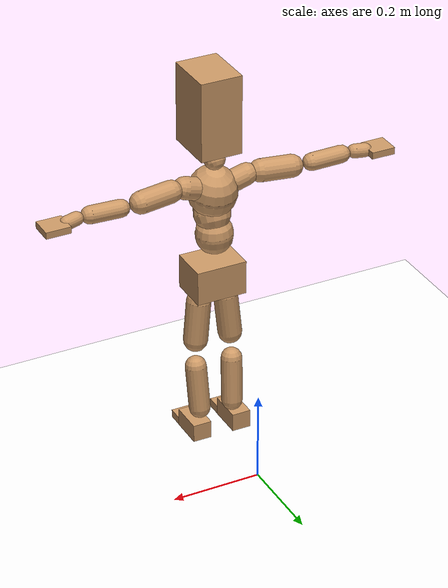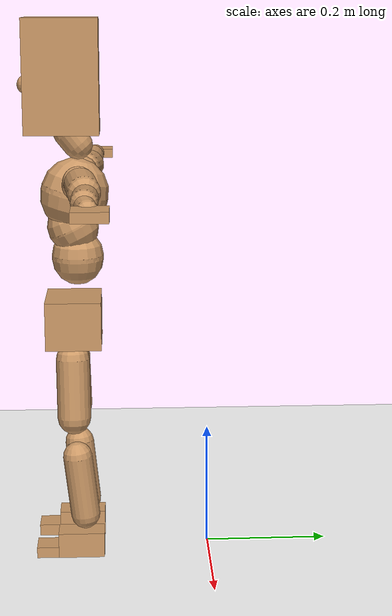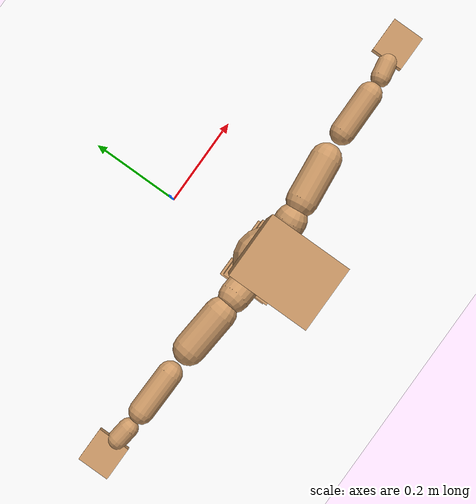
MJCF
<mujoco model="humanoid">
  <option integrator="implicitfast" />

  <visual>
    <global offwidth="1280" offheight="960" />
    <headlight active="1" ambient="0.34 0.34 0.34" diffuse="0.5 0.5 0.5" />
  </visual>

  <default>
    <joint damping="2" stiffness="2" armature="0.01" limited="true" solimplimit="0 .99 .01" />
    <geom condim="1" friction="0.7 0.005 0.0001" solimp=".99 .99 .003" solref="0.015 1" margin="0.001" rgba="0.8 0.6 .4 1" />
    <default class="smplcontact">
      <geom condim="3" friction="1. 0.005 0.0001" solref="0.015 1" solimp="0.98 0.98 0.001" priority="1" />
    </default>
    <default class="stiff_medium">
      <joint stiffness="10" />
    </default>
    <default class="stiff_medium_higher">
      <joint stiffness="50" />
    </default>
    <default class="stiff_high">
      <joint stiffness="100" />
    </default>
  </default>

  <asset>
    <texture type="skybox" builtin="gradient" rgb1="0.99 0.99 0.99" rgb2="0.608 0.828 0.892" width="100" />
    <texture builtin="flat" height="1278" mark="cross" markrgb="1 1 1" name="texgeom" random="0.01" rgb1="0.8 0.6 0.4" rgb2="0.8 0.6 0.4" type="cube" width="127" />
    <texture name="texplane" type="2d" builtin="checker" markrgb="1 1 1" rgb1="0.756 0.772 0.76" rgb2="0.6 0.6 0.6" width="100" height="100" />
    <material name="MatPlane" reflectance="0.5" texture="texplane" texrepeat="1 1" texuniform="true" />
    <material name="geom" texture="texgeom" texuniform="true" />
  </asset>

  <worldbody>
    <light name="tracking_light" pos="0 0 7" dir="0 0 -1" directional="true" cutoff="100" exponent="1" diffuse="1 1 1" specular="0.1 0.1 0.1" mode="trackcom" />
    <camera name="back" pos="0 3 2.4" xyaxes="-1 0 0 0 -1 2" mode="trackcom" />
    <camera name="side" pos="-3 0 2.4" xyaxes="0 -1 0 1 0 2" mode="trackcom" />
    <camera name="front_side" pos="-2.8 -2.8 0.8" xyaxes="0.5 -0.5 0 0.1 0.1 1" mode="trackcom" />
    <geom condim="3" name="floor" pos="0 0 0" rgba="1 1 1 1" size="100 100 .2" type="plane" material="MatPlane" />
    <body name="Pelvis" pos="-0.0018 -0.2233 0.399584" euler="90 0 0">
      <site name="Pelvis" size="0.01" />
      <freejoint name="Pelvis" />
      <geom type="box" pos="-0.0000 -0.0121 -0.0055" size="0.0576847 0.0389601 0.044788" quat="1.0000 0.0000 0.0000 0.0000" density="3165.830099" name="Pelvis" />
      <body name="L_Hip" pos="0.0295926 -0.0389175 -0.00289539">
        <joint name="L_Hip_x" type="hinge" pos="0 0 0" axis="1 0 0" stiffness="10" range="-160.0 22.92" class="stiff_medium" damping="15" />
        <joint name="L_Hip_y" type="hinge" pos="0 0 0" axis="0 1 0" stiffness="10" range="-70.0 70.0" class="stiff_medium" damping="10" />
        <joint name="L_Hip_z" type="hinge" pos="0 0 0" axis="0 0 1" stiffness="10" range="-28.65 90.0" class="stiff_medium" damping="10" />
        <geom type="capsule" density="2040.816327" fromto="0.00293797 -0.0319345 -0.000383214 0.0116667 -0.127823 -0.00153285" size="0.0271431" name="L_Hip" />
        <body name="L_Knee" pos="0.0146047 -0.159758 -0.00191607">
          <joint name="L_Knee_x" type="hinge" pos="0 0 0" axis="1 0 0" range="-5.16 171.89" damping="8" />
          <joint name="L_Knee_y" type="hinge" pos="0 0 0" axis="0 1 0" range="-4.58 6.88" damping="8" />
          <joint name="L_Knee_z" type="hinge" pos="0 0 0" axis="0 0 1" range="-6.88 4.58" damping="8" />
          <geom type="capsule" density="1234.567901" fromto="-0.00114964 -0.0338931 -0.0037044 -0.00464114 -0.135572 -0.0149028" size="0.0238771" name="L_Knee" />
          <body name="L_Ankle" pos="-0.00579078 -0.169466 -0.0186072">
            <joint name="L_Ankle_x" type="hinge" pos="0 0 0" axis="1 0 0" range="-45.84 45.84" class="stiff_medium" damping="6" />
            <joint name="L_Ankle_y" type="hinge" pos="0 0 0" axis="0 1 0" range="-74.48 22.92" class="stiff_medium" damping="3" />
            <joint name="L_Ankle_z" type="hinge" pos="0 0 0" axis="0 0 1" range="-4.58 4.58" class="stiff_medium" damping="6" />
            <geom type="box" pos="0.00992098 -0.0101765 0.0103042" size="0.0213173 0.0204787 0.0375149" quat="1.0000 0.0000 0.0000 0.0000" density="449.071558" name="L_Ankle" class="smplcontact" />
            <body name="L_Toe" pos="0.0112409 -0.0237592 0.0507971">
              <joint name="L_Toe_x" type="hinge" pos="0 0 0" axis="1 0 0" range="-91.67 22.92" />
              <joint name="L_Toe_y" type="hinge" pos="0 0 0" axis="0 1 0" range="-4.58 4.58" />
              <joint name="L_Toe_z" type="hinge" pos="0 0 0" axis="0 0 1" range="-4.58 4.58" />
              <geom type="box" pos="-0.00127738 0.00234186 0.0105597" size="0.0210966 0.00882703 0.021891" quat="1.0000 0.0000 0.0000 0.0000" density="423.206892" name="L_Toe" class="smplcontact" />
            </body>
          </body>
        </body>
      </body>
      <body name="R_Hip" pos="-0.0288262 -0.0385343 -0.00183091">
        <joint name="R_Hip_x" type="hinge" pos="0 0 0" axis="1 0 0" stiffness="10" range="-160.0 22.92" class="stiff_medium" damping="15" />
        <joint name="R_Hip_y" type="hinge" pos="0 0 0" axis="0 1 0" stiffness="10" range="-70.0 70.0" class="stiff_medium" damping="10" />
        <joint name="R_Hip_z" type="hinge" pos="0 0 0" axis="0 0 1" stiffness="10" range="-90.0 28.65" class="stiff_medium" damping="10" />
        <geom type="capsule" density="2040.816327" fromto="-0.00327861 -0.0325732 -0.000766427 -0.0130293 -0.130335 -0.00302313" size="0.0267459" name="R_Hip" />
        <body name="R_Knee" pos="-0.0163079 -0.162908 -0.00378956">
          <joint name="R_Knee_x" type="hinge" pos="0 0 0" axis="1 0 0" range="-5.16 171.89" damping="8" />
          <joint name="R_Knee_y" type="hinge" pos="0 0 0" axis="0 1 0" range="-6.88 4.58" damping="8" />
          <joint name="R_Knee_z" type="hinge" pos="0 0 0" axis="0 0 1" range="-4.58 6.88" damping="8" />
          <geom type="capsule" density="1234.567901" fromto="0.00136254 -0.0339357 -0.00361924 0.00536499 -0.1357 -0.0143918" size="0.0238771" name="R_Knee" />
          <body name="R_Ankle" pos="0.00672753 -0.169636 -0.018011">
            <joint name="R_Ankle_x" type="hinge" pos="0 0 0" axis="1 0 0" range="-45.84 45.84" class="stiff_medium" damping="6" />
            <joint name="R_Ankle_y" type="hinge" pos="0 0 0" axis="0 1 0" range="-22.92 74.48" class="stiff_medium" damping="3" />
            <joint name="R_Ankle_z" type="hinge" pos="0 0 0" axis="0 0 1" range="-4.58 4.58" class="stiff_medium" damping="6" />
            <geom type="box" pos="-0.00902681 -0.0074088 0.0109003" size="0.0213173 0.0210966 0.0381769" quat="1.0000 0.0000 0.0000 0.0000" density="434.700981" name="R_Ankle" class="smplcontact" />
            <body name="R_Toe" pos="-0.0108151 -0.0204806 0.0525003">
              <joint name="R_Toe_x" type="hinge" pos="0 0 0" axis="1 0 0" range="-91.67 22.92" />
              <joint name="R_Toe_y" type="hinge" pos="0 0 0" axis="0 1 0" range="-4.58 4.58" />
              <joint name="R_Toe_z" type="hinge" pos="0 0 0" axis="0 0 1" range="-4.58 4.58" />
              <geom type="box" pos="0.00178833 0.00191607 0.0096655" size="0.0211407 0.00953319 0.0217586" quat="1.0000 0.0000 0.0000 0.0000" density="407.384095" name="R_Toe" class="smplcontact" />
            </body>
          </body>
        </body>
      </body>
      <body name="Torso" pos="-0.00130148 0.0567445 -0.0138998">
        <joint name="Torso_x" type="hinge" pos="0 0 0" axis="1 0 0" range="-25.78 57.3" class="stiff_medium" damping="15" />
        <joint name="Torso_y" type="hinge" pos="0 0 0" axis="0 1 0" range="-57.3 57.3" class="stiff_high" damping="20" />
        <joint name="Torso_z" type="hinge" pos="0 0 0" axis="0 0 1" range="-34.38 34.38" class="stiff_high" damping="20" />
        <geom type="capsule" density="2040.816327" fromto="0.00130148 0.031652 0.000260296 0.00156177 0.03868 0.000312355" size="0.0414963" name="Torso" />
        <body name="Spine" pos="0.00286325 0.070384 0.000572651">
          <joint name="Spine_x" type="hinge" pos="0 0 0" axis="1 0 0" stiffness="10" range="-25.78 57.3" class="stiff_medium" damping="15" />
          <joint name="Spine_y" type="hinge" pos="0 0 0" axis="0 1 0" stiffness="10" range="-57.3 57.3" class="stiff_high" damping="8" />
          <joint name="Spine_z" type="hinge" pos="0 0 0" axis="0 0 1" stiffness="20" range="-34.38 34.38" class="stiff_high" damping="12" />
          <geom type="capsule" density="2040.816327" fromto="0.000364414 0.0123901 0.00593474 0.000416473 0.0151492 0.00728828" size="0.0407409" name="Spine" />
          <body name="Chest" pos="0.000780887 0.0275393 0.013223">
            <joint name="Chest_x" type="hinge" pos="0 0 0" axis="1 0 0" stiffness="10" range="-25.78 57.3" class="stiff_medium" damping="15" />
            <joint name="Chest_y" type="hinge" pos="0 0 0" axis="0 1 0" stiffness="10" range="-57.3 57.3" class="stiff_high" damping="8" />
            <joint name="Chest_z" type="hinge" pos="0 0 0" axis="0 0 1" stiffness="20" range="-34.38 34.38" class="stiff_high" damping="12" />
            <geom type="capsule" density="2040.816327" fromto="-0.000468532 0.0355043 -0.00900623 -0.000520592 0.0433653 -0.0110365" size="0.0540693" name="Chest" />
            <body name="Neck" pos="-0.00145766 0.111355 -0.0223334">
              <joint name="Neck_x" type="hinge" pos="0 0 0" axis="1 0 0" range="-28.65 57.3" class="stiff_medium_higher" damping="10" />
              <joint name="Neck_y" type="hinge" pos="0 0 0" axis="0 1 0" range="-40.11 40.11" class="stiff_medium_higher" damping="10" />
              <joint name="Neck_z" type="hinge" pos="0 0 0" axis="0 0 1" range="-40.11 40.11" class="stiff_medium_higher" damping="10" />
              <geom type="capsule" density="1000" fromto="0.000520592 0.00676769 0.00536209 0.00213443 0.0270708 0.0213963" size="0.0235272" name="Neck" />
              <body name="Head" pos="0.00388764 0.0485955 0.038353">
                <joint name="Head_x" type="hinge" pos="0 0 0" axis="1 0 0" range="-28.65 57.3" class="stiff_medium_higher" damping="2" />
                <joint name="Head_y" type="hinge" pos="0 0 0" axis="0 1 0" range="-40.11 40.11" class="stiff_medium_higher" damping="2" />
                <joint name="Head_z" type="hinge" pos="0 0 0" axis="0 0 1" range="-40.11 40.11" class="stiff_medium_higher" damping="2" />
                <geom type="box" pos="-0.00314001 0.0654917 -0.00867242" size="0.0469614 0.0894282 0.0588955" quat="1.0000 0.0000 0.0000 0.0000" density="1018.069894" name="Head" />
                <geom type="capsule" name="nose" size="0.0154988 0.00774941" pos="0 0.0523336 0.0373811" quat="1 0 0 0" mass="0" contype="0" conaffinity="0" />
              </body>
            </body>
            <body name="L_Thorax" pos="0.0364627 0.0563135 -0.0157789">
              <joint name="L_Thorax_x" type="hinge" pos="0 0 0" axis="1 0 0" range="-10.89 4.58" class="stiff_medium_higher" damping="20" />
              <joint name="L_Thorax_y" type="hinge" pos="0 0 0" axis="0 1 0" range="-28.65 17.19" class="stiff_medium_higher" damping="20" />
              <joint name="L_Thorax_z" type="hinge" pos="0 0 0" axis="0 0 1" range="-31.51 40.11" class="stiff_medium_higher" damping="20" />
              <geom type="capsule" density="1000" fromto="0.00842158 0.00282262 -0.000832903 0.0336863 0.0112905 -0.00328534" size="0.0249888" name="L_Thorax" />
              <body name="L_Shoulder" pos="0.0421079 0.0141131 -0.00411824">
                <joint name="L_Shoulder_x" type="hinge" pos="0 0 0" axis="1 0 0" range="-97.4 97.4" class="stiff_medium" damping="6" />
                <joint name="L_Shoulder_y" type="hinge" pos="0 0 0" axis="0 1 0" range="-108.86 80.21" class="stiff_medium" damping="6" />
                <joint name="L_Shoulder_z" type="hinge" pos="0 0 0" axis="0 0 1" range="-97.4 85.94" class="stiff_medium" damping="6" />
                <geom type="capsule" density="1000" fromto="0.0240154 -0.00120308 -0.00254498 0.0961078 -0.00471979 -0.0101799" size="0.024797" name="L_Shoulder" />
                <body name="L_Elbow" pos="0.120123 -0.00592287 -0.0127249">
                  <joint name="L_Elbow_x" type="hinge" pos="0 0 0" axis="1 0 0" range="-17.19 4.58" damping="5" />
                  <joint name="L_Elbow_y" type="hinge" pos="0 0 0" axis="0 1 0" range="-180.0 17.19" damping="5" />
                  <joint name="L_Elbow_z" type="hinge" pos="0 0 0" axis="0 0 1" range="-100.84 4.58" damping="5" />
                  <geom type="capsule" density="1000" fromto="0.0230437 0.000832903 -9.25448e-05 0.0922672 0.00333161 -0.000416452" size="0.0194251" name="L_Elbow" />
                  <body name="L_Wrist" pos="0.115311 0.00416452 -0.000555269">
                    <joint name="L_Wrist_x" type="hinge" pos="0 0 0" axis="1 0 0" range="-180.0 22.92" />
                    <joint name="L_Wrist_y" type="hinge" pos="0 0 0" axis="0 1 0" range="-17.19 17.19" />
                    <joint name="L_Wrist_z" type="hinge" pos="0 0 0" axis="0 0 1" range="-22.92 22.92" />
                    <geom type="capsule" density="1000" fromto="0.00777376 -0.000740358 -0.00138817 0.0310951 -0.00300771 -0.00555269" size="0.0152523" name="L_Wrist" class="smplcontact" />
                    <body name="L_Hand" pos="0.0388688 -0.00379434 -0.00689459">
                      <joint name="L_Hand_x" type="hinge" pos="0 0 0" axis="1 0 0" range="-17.19 17.19" />
                      <joint name="L_Hand_y" type="hinge" pos="0 0 0" axis="0 1 0" range="-51.57 51.57" />
                      <joint name="L_Hand_z" type="hinge" pos="0 0 0" axis="0 0 1" range="-91.67 91.67" />
                      <geom type="box" pos="0.0228123 0.000462724 -0.0026838" size="0.0280585 0.00757819 0.0258042" quat="1.0000 0.0000 0.0000 0.0000" density="400.552564" name="L_Hand" class="smplcontact" />
                    </body>
                  </body>
                </body>
              </body>
            </body>
            <body name="R_Thorax" pos="-0.0378508 0.0549716 -0.0178611">
              <joint name="R_Thorax_x" type="hinge" pos="0 0 0" axis="1 0 0" range="-10.89 4.58" class="stiff_medium_higher" damping="20" />
              <joint name="R_Thorax_y" type="hinge" pos="0 0 0" axis="0 1 0" range="-17.19 28.65" class="stiff_medium_higher" damping="20" />
              <joint name="R_Thorax_z" type="hinge" pos="0 0 0" axis="0 0 1" range="-40.11 31.51" class="stiff_medium_higher" damping="20" />
              <geom type="capsule" density="1000" fromto="-0.0088843 0.00300771 -0.000832903 -0.0355372 0.0120308 -0.00337789" size="0.0245092" name="R_Thorax" />
              <body name="R_Shoulder" pos="-0.0444215 0.0150848 -0.00421079">
                <joint name="R_Shoulder_x" type="hinge" pos="0 0 0" axis="1 0 0" range="-97.4 97.4" class="stiff_medium" damping="6" />
                <joint name="R_Shoulder_y" type="hinge" pos="0 0 0" axis="0 1 0" range="-80.21 108.86" class="stiff_medium" damping="6" />
                <joint name="R_Shoulder_z" type="hinge" pos="0 0 0" axis="0 0 1" range="-85.94 97.4" class="stiff_medium" damping="6" />
                <geom type="capsule" density="1000" fromto="-0.0234601 -0.00124935 -0.00198971 -0.093933 -0.00495115 -0.00791258" size="0.0254685" name="R_Shoulder" />
                <body name="R_Elbow" pos="-0.117393 -0.00615423 -0.00990229">
                  <joint name="R_Elbow_x" type="hinge" pos="0 0 0" axis="1 0 0" range="-17.19 4.58" damping="5" />
                  <joint name="R_Elbow_y" type="hinge" pos="0 0 0" axis="0 1 0" range="-17.19 180.0" damping="5" />
                  <joint name="R_Elbow_z" type="hinge" pos="0 0 0" axis="0 0 1" range="-4.58 100.84" damping="5" />
                  <geom type="capsule" density="1000" fromto="-0.0236452 0.000740358 -0.000508996 -0.0944883 0.00286889 -0.00203599" size="0.019569" name="R_Elbow" />
                  <body name="R_Wrist" pos="-0.118133 0.00360925 -0.00259125">
                    <joint name="R_Wrist_x" type="hinge" pos="0 0 0" axis="1 0 0" range="-180.0 22.92" />
                    <joint name="R_Wrist_y" type="hinge" pos="0 0 0" axis="0 1 0" range="-17.19 17.19" />
                    <joint name="R_Wrist_z" type="hinge" pos="0 0 0" axis="0 0 1" range="-22.92 22.92" />
                    <geom type="capsule" density="1000" fromto="-0.00782004 -0.000555269 -0.00097172 -0.0313264 -0.00226735 -0.00384061" size="0.015636" name="R_Wrist" class="smplcontact" />
                    <body name="R_Hand" pos="-0.0391465 -0.00282262 -0.00476606">
                      <joint name="R_Hand_x" type="hinge" pos="0 0 0" axis="1 0 0" range="-17.19 17.19" />
                      <joint name="R_Hand_y" type="hinge" pos="0 0 0" axis="0 1 0" range="-51.57 51.57" />
                      <joint name="R_Hand_z" type="hinge" pos="0 0 0" axis="0 0 1" range="-91.67 91.67" />
                      <geom type="box" pos="-0.0213779 -0.000416452 -0.00365552" size="0.0272911 0.00786597 0.0261879" quat="1.0000 0.0000 0.0000 0.0000" density="403.679611" name="R_Hand" class="smplcontact" />
                    </body>
                  </body>
                </body>
              </body>
            </body>
          </body>
        </body>
      </body>
    </body>
  </worldbody>
  <actuator>
    <general name="L_Hip_x" joint="L_Hip_x" biastype="affine" gainprm="287.33006409732246" biasprm="-215.3247604770444 -180 -2.0" ctrllimited="true" ctrlrange="-1 1" forcerange="-360 360" />
    <general name="L_Hip_y" joint="L_Hip_y" biastype="affine" gainprm="219.9114857512855" biasprm="0.0 -180 -2.0" ctrllimited="true" ctrlrange="-1 1" forcerange="-360 360" />
    <general name="L_Hip_z" joint="L_Hip_z" biastype="affine" gainprm="186.3749841742145" biasprm="96.3683546488669 -180 -2.0" ctrllimited="true" ctrlrange="-1 1" forcerange="-360 360" />
    <general name="L_Knee_x" joint="L_Knee_x" biastype="affine" gainprm="278.10948965903646" biasprm="261.8988715665131 -180 -2.0" ctrllimited="true" ctrlrange="-1 1" forcerange="-360 360" />
    <general name="L_Knee_y" joint="L_Knee_y" biastype="affine" gainprm="18.001325905069514" biasprm="3.612831551628262 -180 -2.0" ctrllimited="true" ctrlrange="-1 1" forcerange="-360 360" />
    <general name="L_Knee_z" joint="L_Knee_z" biastype="affine" gainprm="18.001325905069514" biasprm="-3.612831551628262 -180 -2.0" ctrllimited="true" ctrlrange="-1 1" forcerange="-360 360" />
    <general name="L_Ankle_x" joint="L_Ankle_x" biastype="affine" gainprm="72.00530362027807" biasprm="0.0 -90 -2.0" ctrllimited="true" ctrlrange="-1 1" forcerange="-180 180" />
    <general name="L_Ankle_y" joint="L_Ankle_y" biastype="affine" gainprm="76.49778111491148" biasprm="-40.49512930477244 -90 -2.0" ctrllimited="true" ctrlrange="-1 1" forcerange="-180 180" />
    <general name="L_Ankle_z" joint="L_Ankle_z" biastype="affine" gainprm="7.1942471767206255" biasprm="0.0 -90 -2.0" ctrllimited="true" ctrlrange="-1 1" forcerange="-180 180" />
    <general name="L_Toe_x" joint="L_Toe_x" biastype="affine" gainprm="71.99902043497087" biasprm="-43.19689898685965 -72 -0.8" ctrllimited="true" ctrlrange="-1 1" forcerange="-144 144" />
    <general name="L_Toe_y" joint="L_Toe_y" biastype="affine" gainprm="5.755397741376501" biasprm="0.0 -72 -0.8" ctrllimited="true" ctrlrange="-1 1" forcerange="-144 144" />
    <general name="L_Toe_z" joint="L_Toe_z" biastype="affine" gainprm="5.755397741376501" biasprm="0.0 -72 -0.8" ctrllimited="true" ctrlrange="-1 1" forcerange="-144 144" />
    <general name="R_Hip_x" joint="R_Hip_x" biastype="affine" gainprm="287.33006409732246" biasprm="-215.3247604770444 -180 -2.0" ctrllimited="true" ctrlrange="-1 1" forcerange="-360 360" />
    <general name="R_Hip_y" joint="R_Hip_y" biastype="affine" gainprm="219.9114857512855" biasprm="0.0 -180 -2.0" ctrllimited="true" ctrlrange="-1 1" forcerange="-360 360" />
    <general name="R_Hip_z" joint="R_Hip_z" biastype="affine" gainprm="186.3749841742145" biasprm="-96.3683546488669 -180 -2.0" ctrllimited="true" ctrlrange="-1 1" forcerange="-360 360" />
    <general name="R_Knee_x" joint="R_Knee_x" biastype="affine" gainprm="278.10948965903646" biasprm="261.8988715665131 -180 -2.0" ctrllimited="true" ctrlrange="-1 1" forcerange="-360 360" />
    <general name="R_Knee_y" joint="R_Knee_y" biastype="affine" gainprm="18.001325905069514" biasprm="-3.612831551628262 -180 -2.0" ctrllimited="true" ctrlrange="-1 1" forcerange="-360 360" />
    <general name="R_Knee_z" joint="R_Knee_z" biastype="affine" gainprm="18.001325905069514" biasprm="3.612831551628262 -180 -2.0" ctrllimited="true" ctrlrange="-1 1" forcerange="-360 360" />
    <general name="R_Ankle_x" joint="R_Ankle_x" biastype="affine" gainprm="72.00530362027807" biasprm="0.0 -90 -2.0" ctrllimited="true" ctrlrange="-1 1" forcerange="-180 180" />
    <general name="R_Ankle_y" joint="R_Ankle_y" biastype="affine" gainprm="76.49778111491148" biasprm="40.49512930477244 -90 -2.0" ctrllimited="true" ctrlrange="-1 1" forcerange="-180 180" />
    <general name="R_Ankle_z" joint="R_Ankle_z" biastype="affine" gainprm="7.1942471767206255" biasprm="0.0 -90 -2.0" ctrllimited="true" ctrlrange="-1 1" forcerange="-180 180" />
    <general name="R_Toe_x" joint="R_Toe_x" biastype="affine" gainprm="71.99902043497087" biasprm="-43.19689898685965 -72 -0.8" ctrllimited="true" ctrlrange="-1 1" forcerange="-144 144" />
    <general name="R_Toe_y" joint="R_Toe_y" biastype="affine" gainprm="5.755397741376501" biasprm="0.0 -72 -0.8" ctrllimited="true" ctrlrange="-1 1" forcerange="-144 144" />
    <general name="R_Toe_z" joint="R_Toe_z" biastype="affine" gainprm="5.755397741376501" biasprm="0.0 -72 -0.8" ctrllimited="true" ctrlrange="-1 1" forcerange="-144 144" />
    <general name="Torso_x" joint="Torso_x" biastype="affine" gainprm="174.00234510682668" biasprm="66.0153336274335 -240 -4.0" ctrllimited="true" ctrlrange="-1 1" forcerange="-360 360" />
    <general name="Torso_y" joint="Torso_y" biastype="affine" gainprm="240.0176787342602" biasprm="0.0 -240 -4.0" ctrllimited="true" ctrlrange="-1 1" forcerange="-360 360" />
    <general name="Torso_z" joint="Torso_z" biastype="affine" gainprm="144.01060724055614" biasprm="0.0 -240 -4.0" ctrllimited="true" ctrlrange="-1 1" forcerange="-360 360" />
    <general name="Spine_x" joint="Spine_x" biastype="affine" gainprm="174.00234510682668" biasprm="66.0153336274335 -240 -4.0" ctrllimited="true" ctrlrange="-1 1" forcerange="-360 360" />
    <general name="Spine_y" joint="Spine_y" biastype="affine" gainprm="240.0176787342602" biasprm="0.0 -240 -4.0" ctrllimited="true" ctrlrange="-1 1" forcerange="-360 360" />
    <general name="Spine_z" joint="Spine_z" biastype="affine" gainprm="144.01060724055614" biasprm="0.0 -240 -4.0" ctrllimited="true" ctrlrange="-1 1" forcerange="-360 360" />
    <general name="Chest_x" joint="Chest_x" biastype="affine" gainprm="174.00234510682668" biasprm="66.0153336274335 -240 -4.0" ctrllimited="true" ctrlrange="-1 1" forcerange="-360 360" />
    <general name="Chest_y" joint="Chest_y" biastype="affine" gainprm="240.0176787342602" biasprm="0.0 -240 -4.0" ctrllimited="true" ctrlrange="-1 1" forcerange="-360 360" />
    <general name="Chest_z" joint="Chest_z" biastype="affine" gainprm="144.01060724055614" biasprm="0.0 -240 -4.0" ctrllimited="true" ctrlrange="-1 1" forcerange="-360 360" />
    <general name="Neck_x" joint="Neck_x" biastype="affine" gainprm="27.00198885760427" biasprm="9.000662952534757 -36 -0.8" ctrllimited="true" ctrlrange="-1 1" forcerange="-72 72" />
    <general name="Neck_y" joint="Neck_y" biastype="affine" gainprm="25.20185626709732" biasprm="0.0 -36 -0.8" ctrllimited="true" ctrlrange="-1 1" forcerange="-72 72" />
    <general name="Neck_z" joint="Neck_z" biastype="affine" gainprm="25.20185626709732" biasprm="0.0 -36 -0.8" ctrllimited="true" ctrlrange="-1 1" forcerange="-72 72" />
    <general name="Head_x" joint="Head_x" biastype="affine" gainprm="18.001325905069514" biasprm="6.000441968356505 -24 -0.8" ctrllimited="true" ctrlrange="-1 1" forcerange="-48 48" />
    <general name="Head_y" joint="Head_y" biastype="affine" gainprm="16.801237511398213" biasprm="0.0 -24 -0.8" ctrllimited="true" ctrlrange="-1 1" forcerange="-48 48" />
    <general name="Head_z" joint="Head_z" biastype="affine" gainprm="16.801237511398213" biasprm="0.0 -24 -0.8" ctrllimited="true" ctrlrange="-1 1" forcerange="-48 48" />
    <general name="L_Thorax_x" joint="L_Thorax_x" biastype="affine" gainprm="16.200146117011364" biasprm="-6.6078165480505335 -120 -1.6" ctrllimited="true" ctrlrange="-1 1" forcerange="-240 240" />
    <general name="L_Thorax_y" joint="L_Thorax_y" biastype="affine" gainprm="48.00353574685204" biasprm="-12.00088393671301 -120 -1.6" ctrllimited="true" ctrlrange="-1 1" forcerange="-240 240" />
    <general name="L_Thorax_z" joint="L_Thorax_z" biastype="affine" gainprm="75.00028861670033" biasprm="9.00589894029074 -120 -1.6" ctrllimited="true" ctrlrange="-1 1" forcerange="-240 240" />
    <general name="L_Shoulder_x" joint="L_Shoulder_x" biastype="affine" gainprm="81.5976331892389" biasprm="0.0 -48 -1.6" ctrllimited="true" ctrlrange="-1 1" forcerange="-96 96" />
    <general name="L_Shoulder_y" joint="L_Shoulder_y" biastype="affine" gainprm="79.19745640189629" biasprm="-12.00088393671301 -48 -1.6" ctrllimited="true" ctrlrange="-1 1" forcerange="-96 96" />
    <general name="L_Shoulder_z" joint="L_Shoulder_z" biastype="affine" gainprm="76.79727961455369" biasprm="-4.800353574685214 -48 -1.6" ctrllimited="true" ctrlrange="-1 1" forcerange="-96 96" />
    <general name="L_Elbow_x" joint="L_Elbow_x" biastype="affine" gainprm="13.67849441372996" biasprm="-7.923096672353461 -72 -0.8" ctrllimited="true" ctrlrange="-1 1" forcerange="-144 144" />
    <general name="L_Elbow_y" joint="L_Elbow_y" biastype="affine" gainprm="123.89813107227425" biasprm="-102.29653998619085 -72 -0.8" ctrllimited="true" ctrlrange="-1 1" forcerange="-144 144" />
    <general name="L_Elbow_z" joint="L_Elbow_z" biastype="affine" gainprm="66.23733950828719" biasprm="-60.4819417669107 -72 -0.8" ctrllimited="true" ctrlrange="-1 1" forcerange="-144 144" />
    <general name="L_Wrist_x" joint="L_Wrist_x" biastype="affine" gainprm="21.24973270888136" biasprm="-16.449379134196157 -12 -0.8" ctrllimited="true" ctrlrange="-1 1" forcerange="-24 24" />
    <general name="L_Wrist_y" joint="L_Wrist_y" biastype="affine" gainprm="3.6002651810139037" biasprm="0.0 -12 -0.8" ctrllimited="true" ctrlrange="-1 1" forcerange="-24 24" />
    <general name="L_Wrist_z" joint="L_Wrist_z" biastype="affine" gainprm="4.800353574685205" biasprm="0.0 -12 -0.8" ctrllimited="true" ctrlrange="-1 1" forcerange="-24 24" />
    <general name="L_Hand_x" joint="L_Hand_x" biastype="affine" gainprm="3.6002651810139037" biasprm="0.0 -12 -0.8" ctrllimited="true" ctrlrange="-1 1" forcerange="-24 24" />
    <general name="L_Hand_y" joint="L_Hand_y" biastype="affine" gainprm="10.800795543041708" biasprm="0.0 -12 -0.8" ctrllimited="true" ctrlrange="-1 1" forcerange="-24 24" />
    <general name="L_Hand_z" joint="L_Hand_z" biastype="affine" gainprm="19.199319903638422" biasprm="0.0 -12 -0.8" ctrllimited="true" ctrlrange="-1 1" forcerange="-24 24" />
    <general name="R_Thorax_x" joint="R_Thorax_x" biastype="affine" gainprm="16.200146117011364" biasprm="-6.6078165480505335 -120 -1.6" ctrllimited="true" ctrlrange="-1 1" forcerange="-240 240" />
    <general name="R_Thorax_y" joint="R_Thorax_y" biastype="affine" gainprm="48.00353574685204" biasprm="12.000883936713002 -120 -1.6" ctrllimited="true" ctrlrange="-1 1" forcerange="-240 240" />
    <general name="R_Thorax_z" joint="R_Thorax_z" biastype="affine" gainprm="75.00028861670033" biasprm="-9.00589894029074 -120 -1.6" ctrllimited="true" ctrlrange="-1 1" forcerange="-240 240" />
    <general name="R_Shoulder_x" joint="R_Shoulder_x" biastype="affine" gainprm="81.5976331892389" biasprm="0.0 -48 -1.6" ctrllimited="true" ctrlrange="-1 1" forcerange="-96 96" />
    <general name="R_Shoulder_y" joint="R_Shoulder_y" biastype="affine" gainprm="79.19745640189629" biasprm="12.00088393671301 -48 -1.6" ctrllimited="true" ctrlrange="-1 1" forcerange="-96 96" />
    <general name="R_Shoulder_z" joint="R_Shoulder_z" biastype="affine" gainprm="76.79727961455369" biasprm="4.800353574685204 -48 -1.6" ctrllimited="true" ctrlrange="-1 1" forcerange="-96 96" />
    <general name="R_Elbow_x" joint="R_Elbow_x" biastype="affine" gainprm="13.67849441372996" biasprm="-7.923096672353461 -72 -0.8" ctrllimited="true" ctrlrange="-1 1" forcerange="-144 144" />
    <general name="R_Elbow_y" joint="R_Elbow_y" biastype="affine" gainprm="123.89813107227425" biasprm="102.29653998619085 -72 -0.8" ctrllimited="true" ctrlrange="-1 1" forcerange="-144 144" />
    <general name="R_Elbow_z" joint="R_Elbow_z" biastype="affine" gainprm="66.23733950828719" biasprm="60.481941766910694 -72 -0.8" ctrllimited="true" ctrlrange="-1 1" forcerange="-144 144" />
    <general name="R_Wrist_x" joint="R_Wrist_x" biastype="affine" gainprm="21.24973270888136" biasprm="-16.449379134196157 -12 -0.8" ctrllimited="true" ctrlrange="-1 1" forcerange="-24 24" />
    <general name="R_Wrist_y" joint="R_Wrist_y" biastype="affine" gainprm="3.6002651810139037" biasprm="0.0 -12 -0.8" ctrllimited="true" ctrlrange="-1 1" forcerange="-24 24" />
    <general name="R_Wrist_z" joint="R_Wrist_z" biastype="affine" gainprm="4.800353574685205" biasprm="0.0 -12 -0.8" ctrllimited="true" ctrlrange="-1 1" forcerange="-24 24" />
    <general name="R_Hand_x" joint="R_Hand_x" biastype="affine" gainprm="3.6002651810139037" biasprm="0.0 -12 -0.8" ctrllimited="true" ctrlrange="-1 1" forcerange="-24 24" />
    <general name="R_Hand_y" joint="R_Hand_y" biastype="affine" gainprm="10.800795543041708" biasprm="0.0 -12 -0.8" ctrllimited="true" ctrlrange="-1 1" forcerange="-24 24" />
    <general name="R_Hand_z" joint="R_Hand_z" biastype="affine" gainprm="19.199319903638422" biasprm="0.0 -12 -0.8" ctrllimited="true" ctrlrange="-1 1" forcerange="-24 24" />
  </actuator>
  <contact>
    <exclude body1="Torso" body2="Chest" />
    <exclude body1="Head" body2="Chest" />
    <exclude body1="R_Knee" body2="R_Toe" />
    <exclude body1="R_Knee" body2="L_Ankle" />
    <exclude body1="R_Knee" body2="L_Toe" />
    <exclude body1="L_Knee" body2="L_Toe" />
    <exclude body1="L_Knee" body2="R_Ankle" />
    <exclude body1="L_Knee" body2="R_Toe" />
    <exclude body1="L_Shoulder" body2="Chest" />
    <exclude body1="R_Shoulder" body2="Chest" />
  </contact>
  <sensor>
    <framelinvel name="sensor_Pelvis_framelinvel" objtype="xbody" objname="Pelvis" />
    <framelinvel name="sensor_L_Hip_framelinvel" objtype="xbody" objname="L_Hip" />
    <framelinvel name="sensor_L_Knee_framelinvel" objtype="xbody" objname="L_Knee" />
    <framelinvel name="sensor_L_Ankle_framelinvel" objtype="xbody" objname="L_Ankle" />
    <framelinvel name="sensor_L_Toe_framelinvel" objtype="xbody" objname="L_Toe" />
    <framelinvel name="sensor_R_Hip_framelinvel" objtype="xbody" objname="R_Hip" />
    <framelinvel name="sensor_R_Knee_framelinvel" objtype="xbody" objname="R_Knee" />
    <framelinvel name="sensor_R_Ankle_framelinvel" objtype="xbody" objname="R_Ankle" />
    <framelinvel name="sensor_R_Toe_framelinvel" objtype="xbody" objname="R_Toe" />
    <framelinvel name="sensor_Torso_framelinvel" objtype="xbody" objname="Torso" />
    <framelinvel name="sensor_Spine_framelinvel" objtype="xbody" objname="Spine" />
    <framelinvel name="sensor_Chest_framelinvel" objtype="xbody" objname="Chest" />
    <framelinvel name="sensor_Neck_framelinvel" objtype="xbody" objname="Neck" />
    <framelinvel name="sensor_Head_framelinvel" objtype="xbody" objname="Head" />
    <framelinvel name="sensor_L_Thorax_framelinvel" objtype="xbody" objname="L_Thorax" />
    <framelinvel name="sensor_L_Shoulder_framelinvel" objtype="xbody" objname="L_Shoulder" />
    <framelinvel name="sensor_L_Elbow_framelinvel" objtype="xbody" objname="L_Elbow" />
    <framelinvel name="sensor_L_Wrist_framelinvel" objtype="xbody" objname="L_Wrist" />
    <framelinvel name="sensor_L_Hand_framelinvel" objtype="xbody" objname="L_Hand" />
    <framelinvel name="sensor_R_Thorax_framelinvel" objtype="xbody" objname="R_Thorax" />
    <framelinvel name="sensor_R_Shoulder_framelinvel" objtype="xbody" objname="R_Shoulder" />
    <framelinvel name="sensor_R_Elbow_framelinvel" objtype="xbody" objname="R_Elbow" />
    <framelinvel name="sensor_R_Wrist_framelinvel" objtype="xbody" objname="R_Wrist" />
    <framelinvel name="sensor_R_Hand_framelinvel" objtype="xbody" objname="R_Hand" />
    <frameangvel name="sensor_Pelvis_frameangvel" objtype="xbody" objname="Pelvis" />
    <frameangvel name="sensor_L_Hip_frameangvel" objtype="xbody" objname="L_Hip" />
    <frameangvel name="sensor_L_Knee_frameangvel" objtype="xbody" objname="L_Knee" />
    <frameangvel name="sensor_L_Ankle_frameangvel" objtype="xbody" objname="L_Ankle" />
    <frameangvel name="sensor_L_Toe_frameangvel" objtype="xbody" objname="L_Toe" />
    <frameangvel name="sensor_R_Hip_frameangvel" objtype="xbody" objname="R_Hip" />
    <frameangvel name="sensor_R_Knee_frameangvel" objtype="xbody" objname="R_Knee" />
    <frameangvel name="sensor_R_Ankle_frameangvel" objtype="xbody" objname="R_Ankle" />
    <frameangvel name="sensor_R_Toe_frameangvel" objtype="xbody" objname="R_Toe" />
    <frameangvel name="sensor_Torso_frameangvel" objtype="xbody" objname="Torso" />
    <frameangvel name="sensor_Spine_frameangvel" objtype="xbody" objname="Spine" />
    <frameangvel name="sensor_Chest_frameangvel" objtype="xbody" objname="Chest" />
    <frameangvel name="sensor_Neck_frameangvel" objtype="xbody" objname="Neck" />
    <frameangvel name="sensor_Head_frameangvel" objtype="xbody" objname="Head" />
    <frameangvel name="sensor_L_Thorax_frameangvel" objtype="xbody" objname="L_Thorax" />
    <frameangvel name="sensor_L_Shoulder_frameangvel" objtype="xbody" objname="L_Shoulder" />
    <frameangvel name="sensor_L_Elbow_frameangvel" objtype="xbody" objname="L_Elbow" />
    <frameangvel name="sensor_L_Wrist_frameangvel" objtype="xbody" objname="L_Wrist" />
    <frameangvel name="sensor_L_Hand_frameangvel" objtype="xbody" objname="L_Hand" />
    <frameangvel name="sensor_R_Thorax_frameangvel" objtype="xbody" objname="R_Thorax" />
    <frameangvel name="sensor_R_Shoulder_frameangvel" objtype="xbody" objname="R_Shoulder" />
    <frameangvel name="sensor_R_Elbow_frameangvel" objtype="xbody" objname="R_Elbow" />
    <frameangvel name="sensor_R_Wrist_frameangvel" objtype="xbody" objname="R_Wrist" />
    <frameangvel name="sensor_R_Hand_frameangvel" objtype="xbody" objname="R_Hand" />
    <subtreelinvel name="Chest_subtreelinvel" body="Chest" />
    <gyro name="Pelvis_gyro" site="Pelvis" />
  </sensor>
</mujoco>
